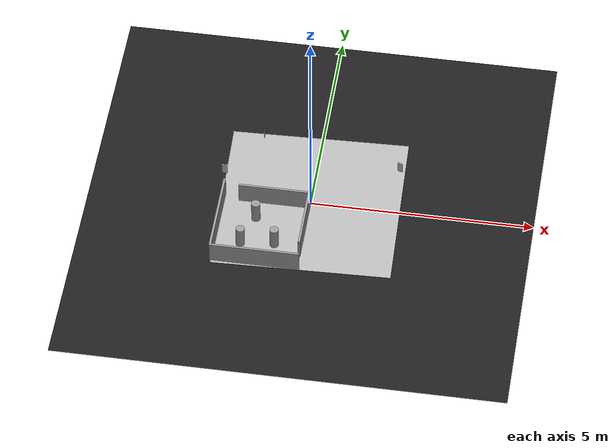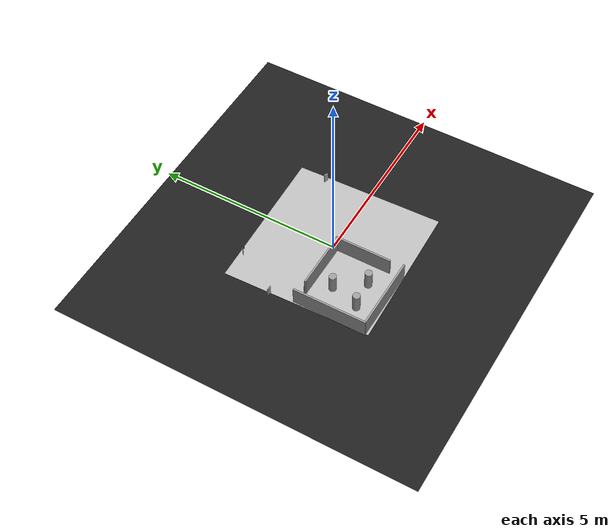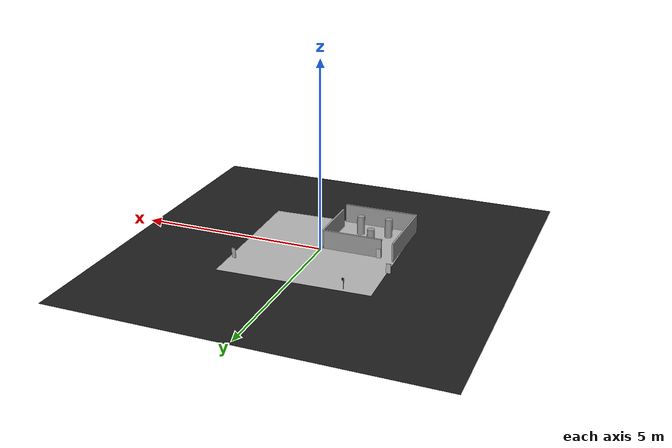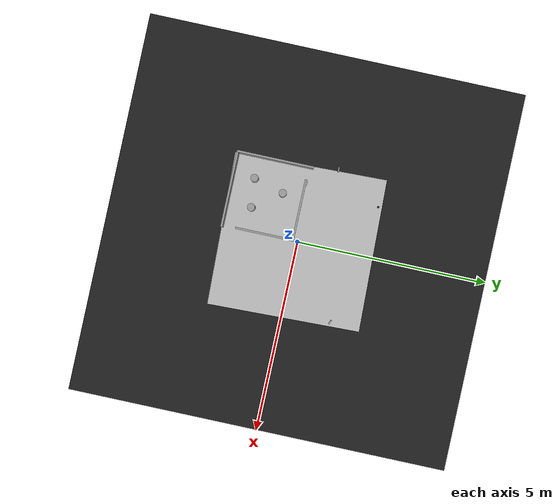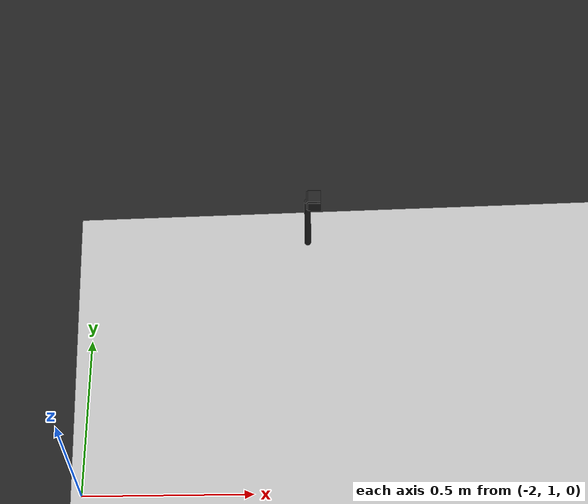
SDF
<sdf version="1.6">
 <world name="default">
  <scene>
   <ambient>0 0 0 1</ambient>
   <shadows>0</shadows>
   <grid>0</grid>
   <background>0.7 0.7 0.7 1</background>
  </scene>
  <include><uri>model://create_autorace/course</uri><pose>0 0 0 0 0 -1.54</pose></include>
  <include><uri>model://create_autorace/traffic_parking</uri><pose>1.84 1.27 0.13 0 0 -0.356</pose></include>
  <include><uri>model://create_autorace/traffic_tunnel</uri><pose>-1.544 -0.08 0.125 0 0 0</pose></include>
  <include>
   <uri>model://create_autorace/traffic_light</uri>
   <pose>-0.016 -0.104 0.125 0 0 3.14159265</pose>
  </include>
  <include><uri>model://create_autorace/traffic_stop</uri><pose>-2.05 0.65 0.125 0 -0 0</pose></include>
  <light name="sun" type="directional">
   <pose>0 0 10 0 -0 0</pose>
   <diffuse>0.8 0.8 0.8 1</diffuse>
   <specular>0.1 0.1 0.1 1</specular>
   <attenuation>
    <range>1000</range>
    <constant>0.9</constant>
    <linear>0.01</linear>
    <quadratic>0.001</quadratic>
   </attenuation>
   <direction>-0.5 0.5 -1</direction>
  </light>
  <model name="ground2">
   <pose>0 0 -0.1 0 -0 0</pose>
   <static>1</static>
   <link name="ground">
    <collision name="ground_coll"><geometry><box><size>8 8 0.01</size></box></geometry></collision>
    <visual name="ground_vis">
     <geometry><box><size>10 10 0.01</size></box></geometry>
     <material>
      <script><uri>file://media/materials/scripts/gazebo.material</uri><name>Gazebo/FlatBlack</name></script>
     </material>
    </visual>
   </link>
  </model>
  <gravity>0 0 -9.8</gravity>
  <magnetic_field>6e-06 2.3e-05 -4.2e-05</magnetic_field>
  <atmosphere type="adiabatic"/>
  <physics name="default_physics" default="0" type="ode">
   <max_step_size>0.001</max_step_size>
   <real_time_factor>1</real_time_factor>
   <real_time_update_rate>1000</real_time_update_rate>
  </physics>
  <spherical_coordinates>
   <surface_model>EARTH_WGS84</surface_model>
   <latitude_deg>0</latitude_deg>
   <longitude_deg>0</longitude_deg>
   <elevation>0</elevation>
   <heading_deg>0</heading_deg>
  </spherical_coordinates>
  <light name="user_point_light_2" type="point">
   <pose>-0.948146 0.604519 1 0 -0 0</pose>
   <diffuse>0.5 0.5 0.5 1</diffuse>
   <specular>0.1 0.1 0.1 1</specular>
   <attenuation>
    <range>20</range>
    <constant>0.5</constant>
    <linear>0.01</linear>
    <quadratic>0.001</quadratic>
   </attenuation>
   <cast_shadows>0</cast_shadows>
   <direction>0 0 -1</direction>
  </light>
  <light name="user_point_light_6" type="point">
   <pose>1.63854 1.69565 1 0 -0 0</pose>
   <diffuse>0.5 0.5 0.5 1</diffuse>
   <specular>0.1 0.1 0.1 1</specular>
   <attenuation>
    <range>20</range>
    <constant>0.5</constant>
    <linear>0.01</linear>
    <quadratic>0.001</quadratic>
   </attenuation>
   <cast_shadows>0</cast_shadows>
   <direction>0 0 -1</direction>
  </light>
  <light name="user_point_light_7" type="point">
   <pose>0.42  -3.31 1 0 -0 0</pose>
   <diffuse>0.5 0.5 0.5 1</diffuse>
   <specular>0.1 0.1 0.1 1</specular>
   <attenuation>
    <range>20</range>
    <constant>0.5</constant>
    <linear>0.01</linear>
    <quadratic>0.001</quadratic>
   </attenuation>
   <cast_shadows>0</cast_shadows>
   <direction>0 0 -1</direction>
  </light>
  <light name="user_point_light_8" type="point">
   <pose>-1.8 1.5 1 0 -0 0</pose>
   <diffuse>0.5 0.5 0.5 1</diffuse>
   <specular>0.1 0.1 0.1 1</specular>
   <attenuation>
    <range>20</range>
    <constant>0.5</constant>
    <linear>0.01</linear>
    <quadratic>0.001</quadratic>
   </attenuation>
   <cast_shadows>0</cast_shadows>
   <direction>0 0 -1</direction>
  </light>
  <model name="tunnel_wall_3">
   <link name="Wall_12">
    <pose>-0.980783 0.049883 0 0 -0 1.5708</pose>
    <visual name="Wall_12_Visual">
     <pose>0 0 0.25 0 -0 0</pose>
     <geometry><box><size>2 0.05 0.5</size></box></geometry>
     <material>
      <script><uri>file://media/materials/scripts/gazebo.material</uri><name>Gazebo/Grey</name></script>
      <ambient>1 1 1 1</ambient>
      <diffuse>0.7 0.7 0.7 1</diffuse>
      <specular>0.01 0.01 0.01 1</specular>
      <emissive>0 0 0 1</emissive>
     </material>
    </visual>
    <collision name="Wall_12_Collision">
     <pose>0 0 0.25 0 -0 0</pose>
     <geometry><box><size>2 0.05 0.5</size></box></geometry>
     <surface>
      <friction>
       <ode><mu>1</mu><mu2>1</mu2><fdir1>0 0 0</fdir1><slip1>0</slip1><slip2>0</slip2></ode>
       <torsional>
        <coefficient>1</coefficient>
        <patch_radius>0</patch_radius>
        <surface_radius>0</surface_radius>
        <use_patch_radius>1</use_patch_radius>
        <ode><slip>0</slip></ode>
       </torsional>
      </friction>
      <bounce><restitution_coefficient>0</restitution_coefficient><threshold>1e+06</threshold></bounce>
      <contact>
       <collide_without_contact>0</collide_without_contact>
       <collide_without_contact_bitmask>1</collide_without_contact_bitmask>
       <collide_bitmask>1</collide_bitmask>
       <ode>
        <soft_cfm>0</soft_cfm>
        <soft_erp>0.2</soft_erp>
        <kp>1e+13</kp>
        <kd>1</kd>
        <max_vel>0.01</max_vel>
        <min_depth>0</min_depth>
       </ode>
       <bullet>
        <split_impulse>1</split_impulse>
        <split_impulse_penetration_threshold>-0.01</split_impulse_penetration_threshold>
        <soft_cfm>0</soft_cfm>
        <soft_erp>0.2</soft_erp>
        <kp>1e+13</kp>
        <kd>1</kd>
       </bullet>
      </contact>
     </surface>
    </collision>
   </link>
   <link name="Wall_14">
    <pose>0 -0.935438 0 0 -0 0</pose>
    <visual name="Wall_14_Visual">
     <pose>0 0 0.25 0 -0 0</pose>
     <geometry><box><size>2.00003 0.05 0.5</size></box></geometry>
     <material>
      <script><uri>file://media/materials/scripts/gazebo.material</uri><name>Gazebo/Grey</name></script>
      <ambient>1 1 1 1</ambient>
      <diffuse>0.7 0.7 0.7 1</diffuse>
      <specular>0.01 0.01 0.01 1</specular>
      <emissive>0 0 0 1</emissive>
     </material>
    </visual>
    <collision name="Wall_14_Collision">
     <pose>0 0 0.25 0 -0 0</pose>
     <geometry><box><size>2.00003 0.05 0.5</size></box></geometry>
     <surface>
      <friction>
       <ode><mu>1</mu><mu2>1</mu2><fdir1>0 0 0</fdir1><slip1>0</slip1><slip2>0</slip2></ode>
       <torsional>
        <coefficient>1</coefficient>
        <patch_radius>0</patch_radius>
        <surface_radius>0</surface_radius>
        <use_patch_radius>1</use_patch_radius>
        <ode><slip>0</slip></ode>
       </torsional>
      </friction>
      <bounce><restitution_coefficient>0</restitution_coefficient><threshold>1e+06</threshold></bounce>
      <contact>
       <collide_without_contact>0</collide_without_contact>
       <collide_without_contact_bitmask>1</collide_without_contact_bitmask>
       <collide_bitmask>1</collide_bitmask>
       <ode>
        <soft_cfm>0</soft_cfm>
        <soft_erp>0.2</soft_erp>
        <kp>1e+13</kp>
        <kd>1</kd>
        <max_vel>0.01</max_vel>
        <min_depth>0</min_depth>
       </ode>
       <bullet>
        <split_impulse>1</split_impulse>
        <split_impulse_penetration_threshold>-0.01</split_impulse_penetration_threshold>
        <soft_cfm>0</soft_cfm>
        <soft_erp>0.2</soft_erp>
        <kp>1e+13</kp>
        <kd>1</kd>
       </bullet>
      </contact>
     </surface>
    </collision>
   </link>
   <link name="Wall_16">
    <pose>0.943396 0.183669 0 0 -0 1.5708</pose>
    <inertial>
     <inertia><ixx>nan</ixx><ixy>0</ixy><ixz>0</ixz><iyy>nan</iyy><iyz>0</iyz><izz>nan</izz></inertia>
     <mass>0</mass>
    </inertial>
    <visual name="Wall_16_Visual">
     <pose>0 0 0.25 0 -0 0</pose>
     <geometry><box><size>1.53699 0.05 0.5</size></box></geometry>
     <material>
      <script><uri>file://media/materials/scripts/gazebo.material</uri><name>Gazebo/Grey</name></script>
      <ambient>1 1 1 1</ambient>
      <diffuse>0.7 0.7 0.7 1</diffuse>
      <specular>0.01 0.01 0.01 1</specular>
      <emissive>0 0 0 1</emissive>
     </material>
    </visual>
    <collision name="Wall_16_Collision">
     <pose>0 0 0.25 0 -0 0</pose>
     <geometry><box><size>1.53699 0.05 0.5</size></box></geometry>
     <surface>
      <friction>
       <ode><mu>1</mu><mu2>1</mu2><fdir1>0 0 0</fdir1><slip1>0</slip1><slip2>0</slip2></ode>
       <torsional>
        <coefficient>1</coefficient>
        <patch_radius>0</patch_radius>
        <surface_radius>0</surface_radius>
        <use_patch_radius>1</use_patch_radius>
        <ode><slip>0</slip></ode>
       </torsional>
      </friction>
      <bounce><restitution_coefficient>0</restitution_coefficient><threshold>1e+06</threshold></bounce>
      <contact>
       <collide_without_contact>0</collide_without_contact>
       <collide_without_contact_bitmask>1</collide_without_contact_bitmask>
       <collide_bitmask>1</collide_bitmask>
       <ode>
        <soft_cfm>0</soft_cfm>
        <soft_erp>0.2</soft_erp>
        <kp>1e+13</kp>
        <kd>1</kd>
        <max_vel>0.01</max_vel>
        <min_depth>0</min_depth>
       </ode>
       <bullet>
        <split_impulse>1</split_impulse>
        <split_impulse_penetration_threshold>-0.01</split_impulse_penetration_threshold>
        <soft_cfm>0</soft_cfm>
        <soft_erp>0.2</soft_erp>
        <kp>1e+13</kp>
        <kd>1</kd>
       </bullet>
      </contact>
     </surface>
    </collision>
   </link>
   <link name="Wall_17">
    <pose>0.15 0.915 0 0 -0 3.14159</pose>
    <visual name="Wall_17_Visual">
     <pose>0 0 0.25 0 -0 0</pose>
     <geometry><box><size>1.58 0.05 0.5</size></box></geometry>
     <material>
      <script><uri>file://media/materials/scripts/gazebo.material</uri><name>Gazebo/Grey</name></script>
      <ambient>1 1 1 1</ambient>
      <diffuse>0.7 0.7 0.7 1</diffuse>
      <specular>0.01 0.01 0.01 1</specular>
      <emissive>0 0 0 1</emissive>
     </material>
    </visual>
    <collision name="Wall_17_Collision">
     <pose>0 0 0.25 0 -0 0</pose>
     <geometry><box><size>1.58 0.05 0.5</size></box></geometry>
     <surface>
      <friction>
       <ode><mu>1</mu><mu2>1</mu2><fdir1>0 0 0</fdir1><slip1>0</slip1><slip2>0</slip2></ode>
       <torsional>
        <coefficient>1</coefficient>
        <patch_radius>0</patch_radius>
        <surface_radius>0</surface_radius>
        <use_patch_radius>1</use_patch_radius>
        <ode><slip>0</slip></ode>
       </torsional>
      </friction>
      <bounce><restitution_coefficient>0</restitution_coefficient><threshold>1e+06</threshold></bounce>
      <contact>
       <collide_without_contact>0</collide_without_contact>
       <collide_without_contact_bitmask>1</collide_without_contact_bitmask>
       <collide_bitmask>1</collide_bitmask>
       <ode>
        <soft_cfm>0</soft_cfm>
        <soft_erp>0.2</soft_erp>
        <kp>1e+13</kp>
        <kd>1</kd>
        <max_vel>0.01</max_vel>
        <min_depth>0</min_depth>
       </ode>
       <bullet>
        <split_impulse>1</split_impulse>
        <split_impulse_penetration_threshold>-0.01</split_impulse_penetration_threshold>
        <soft_cfm>0</soft_cfm>
        <soft_erp>0.2</soft_erp>
        <kp>1e+13</kp>
        <kd>1</kd>
       </bullet>
      </contact>
     </surface>
    </collision>
   </link>
   <static>1</static>
   <pose>-0.964699 -1.03574 0 0 -0 0</pose>
  </model>
  <model name="tunnel_occ_2_1">
   <link name="link_0_clone_clone">
    <pose>0.42322 -0.212034 0.25 0 -0 0</pose>
    <inertial>
     <mass>0.0416663</mass>
     <inertia>
      <ixx>0.00098188</ixx>
      <ixy>0</ixy>
      <ixz>0</ixz>
      <iyy>0.00098188</iyy>
      <iyz>0</iyz>
      <izz>0.00046751</izz>
     </inertia>
    </inertial>
    <visual name="visual">
     <geometry><cylinder><radius>0.1</radius><length>0.5</length></cylinder></geometry>
     <material>
      <lighting>1</lighting>
      <script><uri>file://media/materials/scripts/gazebo.material</uri><name>Gazebo/Grey</name></script>
      <ambient>0.3 0.3 0.3 1</ambient>
      <diffuse>0.7 0.7 0.7 1</diffuse>
      <specular>0.01 0.01 0.01 1</specular>
      <emissive>0 0 0 1</emissive>
      <shader type="pixel"><normal_map>__default__</normal_map></shader>
     </material>
    </visual>
    <collision name="collision">
     <geometry><cylinder><radius>0.1</radius><length>0.46418</length></cylinder></geometry>
     <surface>
      <friction>
       <ode><mu>1</mu><mu2>1</mu2><fdir1>0 0 0</fdir1><slip1>0</slip1><slip2>0</slip2></ode>
       <torsional>
        <coefficient>1</coefficient>
        <patch_radius>0</patch_radius>
        <surface_radius>0</surface_radius>
        <use_patch_radius>1</use_patch_radius>
        <ode><slip>0</slip></ode>
       </torsional>
      </friction>
      <bounce><restitution_coefficient>0</restitution_coefficient><threshold>1e+06</threshold></bounce>
      <contact>
       <collide_without_contact>0</collide_without_contact>
       <collide_without_contact_bitmask>1</collide_without_contact_bitmask>
       <collide_bitmask>1</collide_bitmask>
       <ode>
        <soft_cfm>0</soft_cfm>
        <soft_erp>0.2</soft_erp>
        <kp>1e+13</kp>
        <kd>1</kd>
        <max_vel>0.01</max_vel>
        <min_depth>0</min_depth>
       </ode>
       <bullet>
        <split_impulse>1</split_impulse>
        <split_impulse_penetration_threshold>-0.01</split_impulse_penetration_threshold>
        <soft_cfm>0</soft_cfm>
        <soft_erp>0.2</soft_erp>
        <kp>1e+13</kp>
        <kd>1</kd>
       </bullet>
      </contact>
     </surface>
    </collision>
   </link>
   <link name="link_0_clone_clone_clone">
    <pose>-0.323729 -0.287563 0.25 0 -0 0</pose>
    <inertial>
     <mass>0.0416663</mass>
     <inertia>
      <ixx>0.00098188</ixx>
      <ixy>0</ixy>
      <ixz>0</ixz>
      <iyy>0.00098188</iyy>
      <iyz>0</iyz>
      <izz>0.00046751</izz>
     </inertia>
    </inertial>
    <visual name="visual">
     <geometry><cylinder><radius>0.1</radius><length>0.5</length></cylinder></geometry>
     <material>
      <lighting>1</lighting>
      <script><uri>file://media/materials/scripts/gazebo.material</uri><name>Gazebo/Grey</name></script>
      <ambient>0.3 0.3 0.3 1</ambient>
      <diffuse>0.7 0.7 0.7 1</diffuse>
      <specular>0.01 0.01 0.01 1</specular>
      <emissive>0 0 0 1</emissive>
      <shader type="pixel"><normal_map>__default__</normal_map></shader>
     </material>
    </visual>
    <collision name="collision">
     <geometry><cylinder><radius>0.1</radius><length>0.46418</length></cylinder></geometry>
     <surface>
      <friction>
       <ode><mu>1</mu><mu2>1</mu2><fdir1>0 0 0</fdir1><slip1>0</slip1><slip2>0</slip2></ode>
       <torsional>
        <coefficient>1</coefficient>
        <patch_radius>0</patch_radius>
        <surface_radius>0</surface_radius>
        <use_patch_radius>1</use_patch_radius>
        <ode><slip>0</slip></ode>
       </torsional>
      </friction>
      <bounce><restitution_coefficient>0</restitution_coefficient><threshold>1e+06</threshold></bounce>
      <contact>
       <collide_without_contact>0</collide_without_contact>
       <collide_without_contact_bitmask>1</collide_without_contact_bitmask>
       <collide_bitmask>1</collide_bitmask>
       <ode>
        <soft_cfm>0</soft_cfm>
        <soft_erp>0.2</soft_erp>
        <kp>1e+13</kp>
        <kd>1</kd>
        <max_vel>0.01</max_vel>
        <min_depth>0</min_depth>
       </ode>
       <bullet>
        <split_impulse>1</split_impulse>
        <split_impulse_penetration_threshold>-0.01</split_impulse_penetration_threshold>
        <soft_cfm>0</soft_cfm>
        <soft_erp>0.2</soft_erp>
        <kp>1e+13</kp>
        <kd>1</kd>
       </bullet>
      </contact>
     </surface>
    </collision>
   </link>
   <link name="link_0_clone_clone_clone_clone">
    <pose>-0.099492 0.499594 0.25 0 -0 0</pose>
    <inertial>
     <mass>0.0416663</mass>
     <inertia>
      <ixx>0.00098188</ixx>
      <ixy>0</ixy>
      <ixz>0</ixz>
      <iyy>0.00098188</iyy>
      <iyz>0</iyz>
      <izz>0.00046751</izz>
     </inertia>
    </inertial>
    <visual name="visual">
     <geometry><cylinder><radius>0.1</radius><length>0.5</length></cylinder></geometry>
     <material>
      <lighting>1</lighting>
      <script><uri>file://media/materials/scripts/gazebo.material</uri><name>Gazebo/Grey</name></script>
      <ambient>0.3 0.3 0.3 1</ambient>
      <diffuse>0.7 0.7 0.7 1</diffuse>
      <specular>0.01 0.01 0.01 1</specular>
      <emissive>0 0 0 1</emissive>
      <shader type="pixel"><normal_map>__default__</normal_map></shader>
     </material>
    </visual>
    <collision name="collision">
     <geometry><cylinder><radius>0.1</radius><length>0.46418</length></cylinder></geometry>
     <surface>
      <friction>
       <ode><mu>1</mu><mu2>1</mu2><fdir1>0 0 0</fdir1><slip1>0</slip1><slip2>0</slip2></ode>
       <torsional>
        <coefficient>1</coefficient>
        <patch_radius>0</patch_radius>
        <surface_radius>0</surface_radius>
        <use_patch_radius>1</use_patch_radius>
        <ode><slip>0</slip></ode>
       </torsional>
      </friction>
      <bounce><restitution_coefficient>0</restitution_coefficient><threshold>1e+06</threshold></bounce>
      <contact>
       <collide_without_contact>0</collide_without_contact>
       <collide_without_contact_bitmask>1</collide_without_contact_bitmask>
       <collide_bitmask>1</collide_bitmask>
       <ode>
        <soft_cfm>0</soft_cfm>
        <soft_erp>0.2</soft_erp>
        <kp>1e+13</kp>
        <kd>1</kd>
        <max_vel>0.01</max_vel>
        <min_depth>0</min_depth>
       </ode>
       <bullet>
        <split_impulse>1</split_impulse>
        <split_impulse_penetration_threshold>-0.01</split_impulse_penetration_threshold>
        <soft_cfm>0</soft_cfm>
        <soft_erp>0.2</soft_erp>
        <kp>1e+13</kp>
        <kd>1</kd>
       </bullet>
      </contact>
     </surface>
    </collision>
   </link>
   <static>1</static>
   <pose>-1.04145 -1.12671 0 0 -0 0</pose>
  </model>
  <plugin name="word_sim_time_publisher" filename="libworld_time_publisher.so"/>
 </world>
</sdf>

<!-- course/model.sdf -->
<sdf version="1.6">
  <model name="course">
    <static>true</static>
    <link name="course_link">
      <collision name="course_collision">
        <geometry>
          <plane>
            <normal>0 0 1</normal>
            <size>4 4</size>
          </plane>
        </geometry>
        <surface>
          <friction>
            <ode>
              <mu>100</mu>
              <mu2>50</mu2>
            </ode>
          </friction>
        </surface>
      </collision>
      <visual name="course_visual">
        <cast_shadows>false</cast_shadows>
        <geometry>
	        <plane>
            <normal>0 0 1</normal>
            <size>4 4</size>
          </plane>
        </geometry>
	      <material>
          <script>
            <uri>model://create_autorace/course/materials/scripts</uri>
            <uri>model://create_autorace/course/materials/textures</uri>
            <name>course</name>
          </script>
        </material>
      </visual>
    </link>
  </model>
</sdf>

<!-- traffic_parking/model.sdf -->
<sdf version="1.6">
  <model name="traffic_parking">
    <static>true</static>
    <link name="box">
      <pose>0 0 0 0 0 0</pose>
      <collision name="collision">
        <geometry>
          <box>
            <size>0.12 0.025 0.25</size>
          </box>
        </geometry>
      </collision>
      <visual name="visual">
        <geometry>
          <box>
            <size>0.12 0.025 0.25</size>
          </box>
        </geometry>
        <material>
          <script>
            <uri>model://create_autorace/traffic_parking/materials/scripts</uri>
            <uri>model://create_autorace/traffic_parking/materials/textures</uri>
            <name>traffic_parking</name>
          </script>
        </material>
      </visual>
    </link>
  </model>
</sdf>

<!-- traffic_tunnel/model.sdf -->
<sdf version="1.6">
  <model name="traffic_tunnel">
    <pose>0 0 0.125 0 0 0</pose>
    <link name="box">
      <pose>0 0 0 0 0 0</pose>
      <collision name="collision">
        <geometry>
          <box>
            <size>0.12 0.025 0.25</size>
          </box>
        </geometry>
      </collision>
      <visual name="visual">
        <geometry>
          <box>
            <size>0.12 0.025 0.25</size>
          </box>
        </geometry>
        <material>
          <script>
            <uri>model://create_autorace/traffic_tunnel/materials/scripts</uri>
            <uri>model://create_autorace/traffic_tunnel/materials/textures</uri>
            <name>traffic_tunnel</name>
          </script>
        </material>
      </visual>
    </link>
  </model>
</sdf>

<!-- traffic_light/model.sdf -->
<sdf version='1.6'>
  <model name='traffic_light'>
    <pose frame=''>0 0 0 0 -0 -1.5708</pose>

    <link name='traffic_light'>
       <collision name='collision'>
          <pose frame=''>1.3 -1.95 0.13 0 0 0</pose>
          <geometry>
            <sphere>
              <radius>0.015</radius>
            </sphere>
          </geometry>
        </collision>
        <visual name='visual'>
          <plugin name="traffic_light_plugin" filename="libtraffic_light_plugin.so">
            <redTime>1</redTime>
            <yellowTime>1</yellowTime>
            <greenTime>1</greenTime>
          </plugin>
          <pose frame=''>1.3 -1.95 0.13 0 0 0</pose>
          <geometry>
            <sphere>
              <radius>0.015</radius>
            </sphere>
          </geometry>
        </visual>
        <self_collide>0</self_collide>
        <kinematic>0</kinematic>
      </link>
      <static>1</static>

    <link name='traffic_light_wall1_1'>
      <visual name='visual'>
        <pose frame=''>1.3 -1.93 0.13 0 0 0</pose>
        <geometry>
          <box>
            <size>0.04 0.008 0.04</size>
          </box>
        </geometry>
        <material>
          <script>
            <name>Gazebo/Black</name>
            <uri>file://media/materials/scripts/gazebo.material</uri>
          </script>
        </material>
      </visual>
      <self_collide>0</self_collide>
      <kinematic>0</kinematic>
    </link>

    <link name='traffic_light_wall1_2'>
      <visual name='visual'>
        <pose frame=''>1.3 -1.95 0.15 1.57 0 0</pose>
        <geometry>
          <box>
            <size>0.04 0.008 0.04</size>
          </box>
        </geometry>
        <material>
          <script>
            <name>Gazebo/Black</name>
            <uri>file://media/materials/scripts/gazebo.material</uri>
          </script>
        </material>
      </visual>
      <self_collide>0</self_collide>
      <kinematic>0</kinematic>
    </link>

    <link name='traffic_light_wall1_3'>
      <visual name='visual'>
        <pose frame=''>1.3 -1.95 0.11 1.57 0 0</pose>
        <geometry>
          <box>
            <size>0.04 0.008 0.04</size>
          </box>
        </geometry>
        <material>
          <script>
            <name>Gazebo/Black</name>
            <uri>file://media/materials/scripts/gazebo.material</uri>
          </script>
        </material>
      </visual>
      <self_collide>0</self_collide>
      <kinematic>0</kinematic>
    </link>

    <link name='traffic_light_wall1_4'>
      <visual name='visual'>
        <pose frame=''>1.3 -1.97 0.13 0 0 0</pose>
        <geometry>
          <box>
            <size>0.04 0.008 0.04</size>
          </box>
        </geometry>
        <material>
          <script>
            <name>Gazebo/Black</name>
            <uri>file://media/materials/scripts/gazebo.material</uri>
          </script>
        </material>
      </visual>
      <self_collide>0</self_collide>
      <kinematic>0</kinematic>
    </link>

    <link name='traffic_light_wall1_5'>
      <visual name='visual'>
        <pose frame=''>1.32 -1.95 0.13 0 0 1.57</pose>
        <geometry>
          <box>
            <size>0.04 0.008 0.04</size>
          </box>
        </geometry>
        <material>
          <script>
            <name>Gazebo/Black</name>
            <uri>file://media/materials/scripts/gazebo.material</uri>
          </script>
        </material>
      </visual>
      <self_collide>0</self_collide>
      <kinematic>0</kinematic>
    </link>

    <link name='traffic_light_column'>
      <visual name='visual'>
        <pose frame=''>1.32 -1.95 0 0 0 1.57</pose>
        <geometry>
          <cylinder>
            <radius>0.01</radius>
            <length>0.25</length>
          </cylinder>
        </geometry>
        <material>
          <script>
            <name>Gazebo/Black</name>
            <uri>file://media/materials/scripts/gazebo.material</uri>
          </script>
        </material>
      </visual>
      <self_collide>0</self_collide>
      <kinematic>0</kinematic>
    </link>

    <!--Light for the traffic light to have context-independent illumination-->
    <link name='traffic_light_illumination_link'>
      <light name='traffic_light_illumination' type='spot'>
        <pose>1.168278 -1.95 0.125 3.141593 -1.541593 3.141593</pose>
        <frame name='traffic_light'></frame>
        <diffuse>1 1 1 1</diffuse>
        <specular>1 1 1 1</specular>
        <attenuation>
          <range>0.145</range>
          <constant>0</constant>
          <linear>0</linear>
          <quadratic>0</quadratic>
        </attenuation>
        <spot>
          <inner_angle>0</inner_angle>
          <outer_angle>1</outer_angle>
          <falloff>200</falloff>
        </spot>
      </light>
    </link>

    <!--This plugin allows us to create lights inside model files-->
    <plugin name='light_control' filename='libFlashLightPlugin.so'>
      <enable>true</enable>
      <light>
        <id>traffic_light_illumination_link/traffic_light_illumination</id>
        <duration>1</duration>
        <interval>0</interval>
      </light>
    </plugin>

  </model>
</sdf>

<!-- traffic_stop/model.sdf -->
<sdf version="1.6">
  <model name="traffic_stop">
    <static>true</static>
    <link name="box">
      <pose>0 0 0 0 0 0</pose>
      <collision name="collision">
        <geometry>
          <box>
            <size>0.12 0.025 0.25</size>
          </box>
        </geometry>
      </collision>
      <visual name="visual">
        <geometry>
          <box>
            <size>0.12 0.025 0.25</size>
          </box>
        </geometry>
        <material>
          <script>
            <uri>model://create_autorace/traffic_stop/materials/scripts</uri>
            <uri>model://create_autorace/traffic_stop/materials/textures</uri>
            <name>traffic_stop</name>
          </script>
        </material>
      </visual>
    </link>
  </model>
</sdf>
